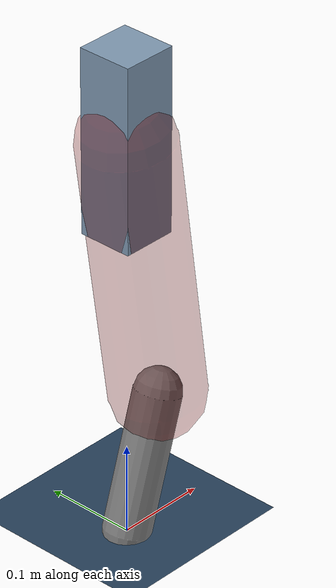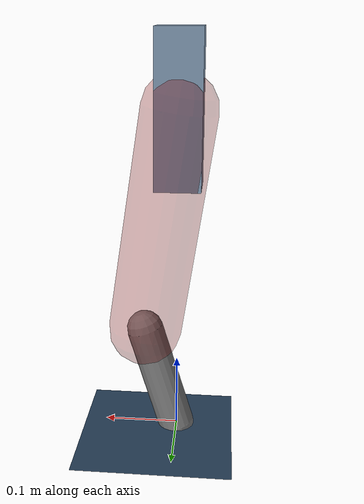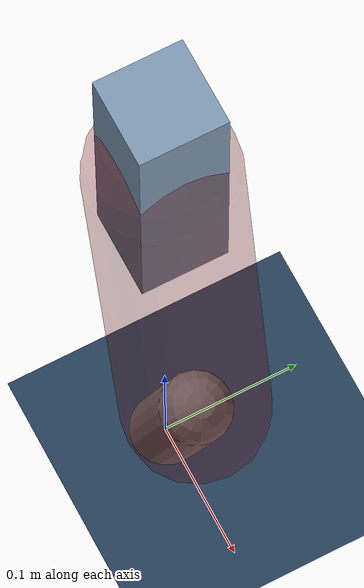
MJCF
<mujoco model="Hopper2D">
	<compiler inertiafromgeom="true" angle="radian" />
	<option timestep="0.001" integrator="implicit" cone="elliptic" solver="Newton" tolerance="1e-10" />

	<default>
		<geom contype="1" conaffinity="1" condim="3" friction="2 0.005 0.0001" solref="0.005 1" />
		<joint limited="true" damping="0.1" />
	</default>

	<asset>
		<texture name="skybox" type="skybox" builtin="gradient" rgb1=".4 .6 .8" rgb2="0 0 0" width="800" height="800" />
		<texture name="grid" type="2d" builtin="checker" rgb1=".1 .2 .3" rgb2=".2 .3 .4" width="300" height="300" mark="edge" markrgb=".2 .3 .4" />
		<material name="ground" texture="grid" texrepeat="1 1" texuniform="true" reflectance="0.1" />
		<material name="leg" rgba="0.5 0.6 0.7 1" />
	</asset>

	<worldbody>

		<geom name="floor" type="plane" size="5 5 0.25" material="ground" />

		<light directional="false" diffuse="0.8 0.8 0.8" specular="0.3 0.3 0.3" pos="0 0 2" dir="0 0 -1" />
		<light mode="targetbodycom" target="base" directional="false" diffuse="0.8 0.8 0.8" specular="0.3 0.3 0.3" pos="0 0 2" dir="0 0 -1" />

		<camera name="fixed" pos="0 -2 1" xyaxes="1 0 0 0 0 1" />
		<camera name="tracking" mode="trackcom" pos="0 -3 1" />

		<body name="root" pos="0 0 0.4447672842081157">
			<joint name="slide_x" type="slide" axis="1 0 0" range="-100 100" />
			<joint name="slide_z" type="slide" axis="0 0 1" range="0 10" />

			<body name="base" pos="0 0 0">
				<geom name="torso" type="box" size="0.03 0.03 0.1" mass="2.872" material="leg" />

				<body name="link1" pos="0 0 0" euler="0 1.4234267761155364 0">
					<joint type="hinge" axis="0 -1 0" pos="0 0 0" name="hinge1" limited="true" range="-3.14 3.14" stiffness="0" damping="0.1" />
					<geom name="thigh" type="capsule" fromto="0 0 0 0.30346733551744 0 0" size="0.05" rgba="0.5 0 0 0.3" mass="0.998161805897088" />

					<body name="link2" pos="0.30346733551744 0 0" euler="0 0.44631779398050425 0">
						<joint type="hinge" axis="0 -1 0" pos="0 0 0" name="hinge2" limited="true" range="-3.14 3.14" stiffness="0" damping="0.1" />
						<geom name="shank" type="capsule" fromto="0 0 0 0.1512999486906757 0 0" size="0.025" mass="0.35886995382160813" />

					</body>
				</body>
			</body>
		</body>
	</worldbody>

	<actuator>
		<motor name="torque1" joint="hinge1" ctrlrange="-35.70536063226264 35.70536063226264" ctrllimited="true" gear="1" />
		<motor name="torque2" joint="hinge2" ctrlrange="-233.70475640083387 233.70475640083387" ctrllimited="true" gear="1" />
	</actuator>
</mujoco>
